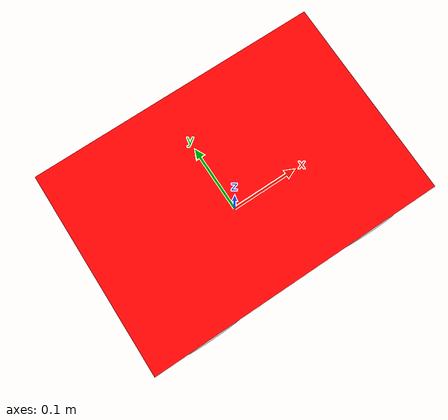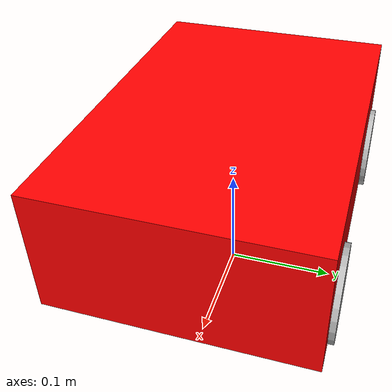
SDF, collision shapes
<?xml version="1.0" ?>
<sdf version="1.6">
  <model name="myagv">
    <static>false</static>

 <pose>0.0 0.0 0.0 0.0 0.0 0.0</pose>
  <link name="base_footprint"/>

  <link name='base_link'>
       <pose>0 0 0.025 0 0 0</pose>
 	<collision name="base_collision">
        <pose>0 0 0.1 0 0 0</pose>
        <geometry>
          <box>
            <size>0.33115 0.23 0.113</size>
          </box>
        </geometry>
      </collision>

      <visual name="base_visual">
        <pose>0 0 0.025 0 0 0</pose>
        <geometry>
          <mesh>
  <uri>model://myagv_description/meshes/myagv_all.dae</uri>
            <scale>1.0 1.0 1.0</scale>
          </mesh>
        </geometry>
        <material>
          <ambient>1.0 0.0 0.0 1.0</ambient>
          <diffuse>1.0 0.0 0.0 1.0</diffuse>
          <specular>0.0 0.0 0.0 1.0</specular>
          <emissive>0.0 0.0 0.0 1.0</emissive>
        </material>
      </visual>

    </link>
      <link name="left_wheel_front_link">
        <pose>0.106 0.1 0.09 0 1.5707 1.5707</pose>
        <collision name="collision">
          <geometry>
            <cylinder>
              <radius>.04</radius>
              <length>.04</length>
            </cylinder>
          </geometry>
        </collision>
        <visual name="visual">
          <geometry>
            <cylinder>
              <radius>.04</radius>
              <length>.04</length>
            </cylinder>
          </geometry>
        </visual>
      </link>

      <link name="right_wheel_front_link">
        <pose>0.106 -0.1 0.09 0 1.5707 1.5707</pose>
        <collision name="collision">
          <geometry>
            <cylinder>
              <radius>.04</radius>
              <length>.04</length>
            </cylinder>
          </geometry>
        </collision>
        <visual name="visual">
          <geometry>
            <cylinder>
              <radius>.04</radius>
              <length>.04</length>
            </cylinder>
          </geometry>
        </visual>
      </link>

      <link name="left_wheel_back_link">
        <pose>-0.106 0.1 0.09 0 1.5707 1.5707</pose>
        <collision name="collision">
          <geometry>
            <cylinder>
              <radius>.04</radius>
              <length>.04</length>
            </cylinder>
          </geometry>
        </collision>
        <visual name="visual">
          <geometry>
            <cylinder>
              <radius>.04</radius>
              <length>.04</length>
            </cylinder>
          </geometry>
        </visual>
      </link>

      <link name="right_wheel_back_link">
        <pose>-0.106 -0.1 0.09 0 1.5707 1.5707</pose>
        <collision name="collision">
          <geometry>
            <cylinder>
              <radius>.04</radius>
              <length>.04</length>
            </cylinder>
          </geometry>
        </collision>
        <visual name="visual">
          <geometry>
            <cylinder>
              <radius>.04</radius>
              <length>.04</length>
            </cylinder>
          </geometry>
        </visual>
      </link>

          <joint type="revolute" name="left_wheel_front_joint">
        <pose>0 0 0 0 0 0</pose>
        <child>left_wheel_front_link</child>
        <parent>base_link</parent>
        <axis>
          <xyz>0 0 1</xyz>
        </axis>
      </joint>

      <joint type="revolute" name="right_wheel_front_joint">
        <pose>0 0 0 0 0 0 </pose>
        <child>right_wheel_front_link</child>
        <parent>base_link</parent>
        <axis>
          <xyz>0 0 1</xyz>
        </axis>
      </joint>

        <joint type="revolute" name="left_wheel_back_joint">
        <pose>0 0 0 0 0 0</pose>
        <child>left_wheel_back_link</child>
        <parent>base_link</parent>
        <axis>
          <xyz>0 0 1</xyz>
        </axis>
      </joint>

      <joint type="revolute" name="right_wheel_back_joint">
        <pose>0 0 0 0 0 0 </pose>
        <child>right_wheel_back_link</child>
        <parent>base_link</parent>
        <axis>
          <xyz>0 0 1</xyz>
        </axis>
      </joint>

       <joint name="base_joint" type="fixed">
    <parent>base_footprint</parent>
    <child>base_link</child>
     <pose>0 0 0 0 0 0 </pose>
  </joint>

<!-- ****************************** LIDAR *****************************    -->
    <!-- Add LIDAR link here -->
    <link name="laser_frame">
      <pose>0.066 0 0.1 0 0 3.14</pose> <!-- Adjust the pose to position the lidar correctly on the roof -->

      <inertial>
        <pose>0 0 0 0 0 0</pose>
        <inertia>
          <ixx>0.001</ixx>
          <ixy>0.000</ixy>
          <ixz>0.000</ixz>
          <iyy>0.001</iyy>
          <iyz>0.000</iyz>
          <izz>0.001</izz>
        </inertia>
        <mass>0.114</mass>
      </inertial>

      <collision name="lidar_collision">
        <pose>0 0 0 0 0 0</pose>
        <geometry>
          <cylinder>
            <radius>0.04</radius>
            <length>0.05</length>
          </cylinder>
        </geometry>
      </collision>

      <visual name="lidar_visual">
        <pose>0 0 0 0 0 0</pose>
        <geometry>
          <cylinder>
            <radius>0.04</radius>
            <length>0.05</length>
          </cylinder>
        </geometry>
        <material>
          <ambient>0.0 0.0 0.0 1.0</ambient>
          <diffuse>0.0 0.0 0.0 1.0</diffuse>
          <specular>0.0 0.0 0.0 1.0</specular>
          <emissive>0.0 0.0 0.0 1.0</emissive>
        </material>
      </visual>

      <sensor name="lidar" type="ray">
        <pose>0 0 0 0 0 0</pose>
        <always_on>true</always_on>
        <visualize>true</visualize>
        <update_rate>5</update_rate>
        <ray>
          <scan>
            <horizontal>
              <samples>120</samples>
              <resolution>1.00000</resolution>
              <min_angle>1</min_angle>
              <max_angle>5.28</max_angle>
            </horizontal>
          </scan>
          <range>
            <min>0.350000</min>
            <max>12</max>
            <resolution>0.015000</resolution>
          </range>
          <noise>
            <type>gaussian</type>
            <mean>0.0</mean>
            <stddev>0.01</stddev>
          </noise>
        </ray>
        <plugin name="scan" filename="libgazebo_ros_ray_sensor.so">
          <ros>
            <remapping>~/out:=scan</remapping>
          </ros>
          <output_type>sensor_msgs/LaserScan</output_type>
          <frame_name>laser_frame</frame_name>
        </plugin>
      </sensor>
    </link>

    <joint name="lidar_joint" type="fixed">
      <pose>0 0 0 0 0 0</pose>
      <parent>base_link</parent>
      <child>laser_frame</child>
    </joint>

   <!-- *********************** IMU SENSOR SETUP **************************  -->
  <link name="imu_link">
    <gravity>true</gravity>
    <sensor name="bmb_imu" type="imu">
      <always_on>true</always_on>
      <update_rate>100</update_rate>
      <visualize>true</visualize>
      <imu>
        <orientation>
          <x>
            <noise type="gaussian">
              <mean>0.0</mean>
              <stddev>2e-3</stddev>
            </noise>
          </x>
          <y>
            <noise type="gaussian">
              <mean>0.0</mean>
              <stddev>2e-3</stddev>
            </noise>
          </y>
          <z>
            <noise type="gaussian">
              <mean>0.0</mean>
              <stddev>2e-3</stddev>
            </noise>
          </z>
        </orientation>
        <angular_velocity>
          <x>
            <noise type="gaussian">
              <mean>0.0</mean>
              <stddev>2e-4</stddev>
            </noise>
          </x>
          <y>
            <noise type="gaussian">
              <mean>0.0</mean>
              <stddev>2e-4</stddev>
            </noise>
          </y>
          <z>
            <noise type="gaussian">
              <mean>0.0</mean>
              <stddev>2e-4</stddev>
            </noise>
          </z>
        </angular_velocity>
        <linear_acceleration>
          <x>
            <noise type="gaussian">
              <mean>0.0</mean>
              <stddev>1.7e-2</stddev>
            </noise>
          </x>
          <y>
            <noise type="gaussian">
              <mean>0.0</mean>
              <stddev>1.7e-2</stddev>
            </noise>
          </y>
          <z>
            <noise type="gaussian">
              <mean>0.0</mean>
              <stddev>1.7e-2</stddev>
            </noise>
          </z>
        </linear_acceleration>
      </imu>
      <plugin name="myagv_imu" filename="libgazebo_ros_imu_sensor.so">
        <initial_orientation_as_reference>false</initial_orientation_as_reference>
        <frame_name>imu_link</frame_name>
        <ros>
          <namespace>/imu</namespace>
          <remapping>~/out:=data</remapping>
        </ros>
      </plugin>
    </sensor>
  </link>

  <!-- *********************** GPS SETUP *********************************  -->
  <link name="gps_link">
    <sensor name="bmb_gps" type="gps">
      <always_on>true</always_on>
      <update_rate>10.0</update_rate>
      <gps>
        <position_sensing>
          <horizontal>
            <noise type="gaussian">
              <mean>0.0</mean>
              <stddev>1e-2</stddev>
            </noise>
          </horizontal>
          <vertical>
            <noise type="gaussian">
              <mean>0.0</mean>
              <stddev>1</stddev>
            </noise>
          </vertical>
        </position_sensing>
      </gps>
      <plugin name="myagv_gps" filename="libgazebo_ros_gps_sensor.so">
        <ros>
          <remapping>~/out:=gps/fix</remapping>
        </ros>
      </plugin>
    </sensor>
  </link>

<plugin name="omni_steering" filename="libgazebo_ros_planar_move.so">
	<commandTopic>cmd_vel</commandTopic>
	<odometryTopic>odom</odometryTopic>
	<odometryFrame>odom</odometryFrame>
	<odometryRate>50.0</odometryRate>
	<robotBaseFrame>base_footprint</robotBaseFrame>
	<publishTF>True</publishTF>
	<ros>
    </ros>
</plugin>

<plugin name="my_agv_joint_state" filename="libgazebo_ros_joint_state_publisher.so">

    <update_rate>30</update_rate>
    <joint_name>left_wheel_front_joint</joint_name>
    <joint_name>right_wheel_front_joint</joint_name>
    <joint_name>left_wheel_back_joint</joint_name>
    <joint_name>right_wheel_back_joint</joint_name>
       <ros>
      <remapping>~/out:=joint_states</remapping>
    </ros>
  </plugin>

  </model>
</sdf>
